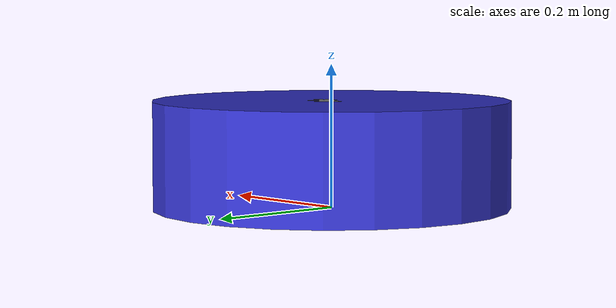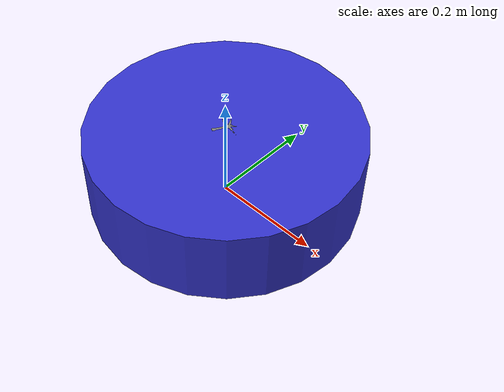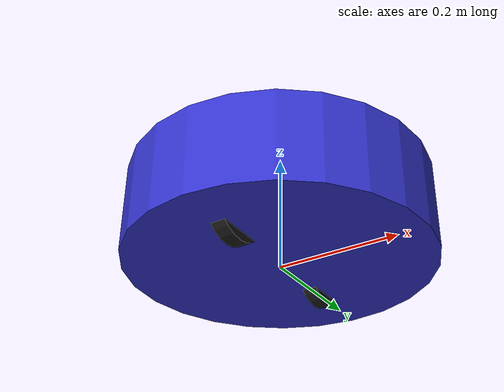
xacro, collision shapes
<?xml version="1.0"?>
<robot name="acrome_mini_robot" xmlns:xacro="http://www.ros.org/wiki/xacro">

  <!-- Parametreler -->
  <xacro:property name="lidar_radius" value="0.03"/>
  <xacro:property name="lidar_height" value="0.04"/>
  <xacro:property name="lidar_mass" value="0.2"/>
  <xacro:property name="PI" value="3.141592653589793"/>

  <!-- Ana robot gövdesi -->
  <link name="base_link">
    <visual>
      <geometry>
        <mesh filename="file:///home/halit/acrome_ws/src/acrome_mini_robot/meshes/base_link.stl" scale="1 1 1"/>
      </geometry>
      <origin xyz="0 0 0.075" rpy="0 0 -1.5708"/>
      <material name="blue">
        <color rgba="0.2 0.2 0.8 1"/>
      </material>
    </visual>
    <collision>
      <geometry>
        <cylinder radius="0.25" length="0.15"/>
      </geometry>
      <origin xyz="0 0 0.075" rpy="0 0 -1.5708"/>
    </collision>
    <inertial>
      <mass value="5.0"/>
      <origin xyz="0 0 0.075" rpy="0 0 0"/>
      <inertia ixx="0.2083" ixy="0.0" ixz="0.0" iyy="0.2083" iyz="0.0" izz="0.3125"/>
    </inertial>
  </link>

  <!-- Lidar -->
  <link name="lidar_link">
    <visual>
      <geometry>
        <cylinder radius="${lidar_radius}" length="${lidar_height}"/>
      </geometry>
      <origin xyz="0 0 0" rpy="0 0 0"/>
      <material name="gray"><color rgba="0.5 0.5 0.5 1"/></material>
    </visual>
    <collision>
      <geometry>
        <cylinder radius="${lidar_radius}" length="${lidar_height}"/>
      </geometry>
      <origin xyz="0 0 0" rpy="0 0 0"/>
    </collision>
    <inertial>
      <mass value="${lidar_mass}"/>
      <origin xyz="0 0 0" rpy="0 0 0"/>
      <inertia ixx="0.0001" ixy="0" ixz="0" iyy="0.0001" iyz="0" izz="0.0001"/>
    </inertial>
  </link>

  <!-- Caster Wheel Support (Destek Çubuğu) -->
  <link name="caster_support">
    <visual>
      <geometry>
        <cylinder radius="0.005" length="0.03"/>
      </geometry>
      <origin xyz="0 0 -0.015" rpy="0 0 0"/>
      <material name="gray">
        <color rgba="0.5 0.5 0.5 1"/>
      </material>
    </visual>
    <collision>
      <geometry>
        <cylinder radius="0.005" length="0.03"/>
      </geometry>
      <origin xyz="0 0 -0.015" rpy="0 0 0"/>
    </collision>
    <inertial>
      <mass value="0.05"/>
      <origin xyz="0 0 -0.015" rpy="0 0 0"/>
      <inertia ixx="0.00001" ixy="0" ixz="0" iyy="0.00001" iyz="0" izz="0.00001"/>
    </inertial>
  </link>

  <!-- Caster Wheel -->
  <link name="caster_wheel">
    <visual>
      <geometry>
        <sphere radius="0.02"/>
      </geometry>
      <origin xyz="0 0 0" rpy="0 0 0"/>
      <material name="black">
        <color rgba="0.1 0.1 0.1 1"/>
      </material>
    </visual>
    <collision>
      <geometry>
        <sphere radius="0.02"/>
      </geometry>
      <origin xyz="0 0 0" rpy="0 0 0"/>
    </collision>
    <inertial>
      <mass value="0.1"/>
      <origin xyz="0 0 0" rpy="0 0 0"/>
      <inertia ixx="0.000016" ixy="0" ixz="0" iyy="0.000016" iyz="0" izz="0.000016"/>
    </inertial>
  </link>

  <!-- Tekerlek 2 -->
  <link name="wheel_2">
    <visual>
      <geometry>
        <mesh filename="file:///home/halit/acrome_ws/src/acrome_mini_robot/meshes/left_wheel.stl" scale="0.7 0.7 0.7"/>
      </geometry>
      <origin xyz="0 0 0" rpy="1.5708 0 0"/>
      <material name="black">
        <color rgba="0.1 0.1 0.1 1"/>
      </material>
    </visual>
    <collision>
      <geometry>
        <cylinder radius="0.06" length="0.025"/>
      </geometry>
      <origin xyz="0 0 0" rpy="1.5708 0 0"/>
    </collision>
    <inertial>
      <mass value="0.25"/>
      <origin xyz="0 0 0" rpy="0 0 0"/>
      <inertia ixx="0.00045" ixy="0.0" ixz="0.0" iyy="0.00045" iyz="0.0" izz="0.00045"/>
    </inertial>
  </link>

  <!-- Tekerlek 3 - Düzeltilmiş -->
  <link name="wheel_3">
    <visual>
      <geometry>
        <mesh filename="file:///home/halit/acrome_ws/src/acrome_mini_robot/meshes/right_wheel.stl" scale="0.7 0.7 0.7"/>
      </geometry>
      <origin xyz="0 0 0" rpy="1.5708 0 0"/>
      <material name="black">
        <color rgba="0.1 0.1 0.1 1"/>
      </material>
    </visual>
    <collision>
      <geometry>
        <cylinder radius="0.06" length="0.025"/>
      </geometry>
      <origin xyz="0 0 0" rpy="1.5708 0 0"/>
    </collision>
    <inertial>
      <mass value="0.25"/>
      <origin xyz="0 0 0" rpy="0 0 0"/>
      <inertia ixx="0.00045" ixy="0.0" ixz="0.0" iyy="0.00045" iyz="0.0" izz="0.00045"/>
    </inertial>
  </link>

  <joint name="base_to_lidar" type="fixed">
    <parent link="base_link"/>
    <child link="lidar_link"/>
    <origin xyz="0 0.0065 0.13" rpy="0 0 0"/>
  </joint>

  <joint name="base_to_caster_support" type="fixed">
    <parent link="base_link"/>
    <child link="caster_support"/>
    <origin xyz="0.085 0 0.05" rpy="0 0 0"/>
  </joint>

  <joint name="caster_support_to_wheel" type="continuous">
    <parent link="caster_support"/>
    <child link="caster_wheel"/>
    <origin xyz="0 0 -0.03" rpy="0 0 0"/>
    <axis xyz="0 0 1"/>
    <dynamics damping="0.001" friction="0.001"/>
  </joint>

  <joint name="base_to_wheel_2" type="continuous">
    <parent link="base_link"/>
    <child link="wheel_2"/>
    <origin xyz="0 0.13 0.045" rpy="0 0 -1.5708"/>
    <axis xyz="1 0 0"/>
    <dynamics damping="0.1" friction="0.01"/>
  </joint>

  <joint name="base_to_wheel_3" type="continuous">
    <parent link="base_link"/>
    <child link="wheel_3"/>
    <origin xyz="0 -0.13 0.045" rpy="0 0 -1.5708"/>
    <axis xyz="1 0 0"/>
    <dynamics damping="0.1" friction="0.01"/>
  </joint>

  <!-- ROS2 Control -->
  <ros2_control name="GazeboSimSystem" type="system">
    <hardware>
      <plugin>gz_ros2_control/GazeboSimSystem</plugin>
    </hardware>
    <joint name="base_to_wheel_2">
      <command_interface name="velocity">
        <param name="min">-10</param>
        <param name="max">10</param>
      </command_interface>
      <state_interface name="position"/>
      <state_interface name="velocity"/>
      <state_interface name="effort"/>
    </joint>
    <joint name="base_to_wheel_3">
      <command_interface name="velocity">
        <param name="min">-10</param>
        <param name="max">10</param>
      </command_interface>
      <state_interface name="position"/>
      <state_interface name="velocity"/>
      <state_interface name="effort"/>
    </joint>
    <!-- Caster wheel state yayınlamak için dummy joint -->
    <joint name="caster_support_to_wheel">
      <state_interface name="position"/>
      <state_interface name="velocity"/>
      <state_interface name="effort"/>
    </joint>
  </ros2_control>

  <!-- Gazebo pluginleri -->
  <gazebo>
    <plugin filename="gz_ros2_control-system" name="gz_ros2_control::GazeboSimROS2ControlPlugin">
      <parameters>$(find acrome_mini_robot)/config/acrome_controller.yaml</parameters>
    </plugin>
  </gazebo>

  <!-- Ana gövde sürtünmesini düşür -->
  <gazebo reference="base_link">
    <mu1>0.1</mu1>
    <mu2>0.1</mu2>
    <material>Gazebo/Blue</material>
  </gazebo>

  <!-- Gazebo Caster Support Ayarları -->
  <gazebo reference="caster_support">
    <mu1>0.1</mu1>
    <mu2>0.1</mu2>
    <material>Gazebo/Grey</material>
  </gazebo>

  <!-- Gazebo Caster Wheel Ayarları -->
  <gazebo reference="caster_wheel">
    <!-- Düşük sürtünme - kolayca kayabilir -->
    <mu1>0.1</mu1>
    <mu2>0.1</mu2>
    <!-- Düşük sertlik değerleri -->
    <kp>2000.0</kp>
    <kd>5.0</kd>
    <minDepth>0.001</minDepth>
    <maxVel>1.0</maxVel>
    <material>Gazebo/Black</material>
  </gazebo>
<!-- Gazebo ayarları - Lidar sensor kısmı -->
  <gazebo reference="lidar_link">
    <material>Gazebo/Black</material>
    <sensor name="lidar_sensor" type="gpu_lidar">
      <pose>0 0 0 0 0 0</pose>
      <visualize>true</visualize>
      <update_rate>10</update_rate>
      <ray>
        <scan>
          <horizontal>
            <samples>360</samples>
            <resolution>1</resolution>
            <min_angle>-${PI}</min_angle>
            <max_angle>${PI}</max_angle>
          </horizontal>
          <vertical>
            <samples>1</samples>
            <resolution>1</resolution>
            <min_angle>0</min_angle>
            <max_angle>0</max_angle>
          </vertical>
        </scan>
        <range>
          <min>0.12</min>
          <max>12.0</max>
          <resolution>0.01</resolution>
        </range>
      </ray>
      <always_on>1</always_on>
      <topic>/scan</topic>
      <plugin filename="gz-sim-sensors-system" name="gz::sim::systems::Sensors">
        <ros>
          <namespace></namespace>
          <topic>scan</topic>
          <frame_id>lidar_link</frame_id>
        </ros>
      </plugin>
    </sensor>
  </gazebo>

  <gazebo reference="wheel_2">
    <mu1>1.5</mu1>
    <mu2>1.5</mu2>
    <kp>2000.0</kp>
    <kd>5.0</kd>
    <minDepth>0.001</minDepth>
    <maxVel>1.0</maxVel>
    <material>Gazebo/Black</material>
  </gazebo>

  <gazebo reference="wheel_3">
    <mu1>1.5</mu1>
    <mu2>1.5</mu2>
    <kp>2000.0</kp>
    <kd>5.0</kd>
    <minDepth>0.001</minDepth>
    <maxVel>1.0</maxVel>
    <material>Gazebo/Black</material>
  </gazebo>

  <surface>
    <friction>
      <ode>
        <mu>1.5</mu>
        <mu2>1.5</mu2>
        <fdir1>0 1 0</fdir1>
        <slip1>0.01</slip1>
        <slip2>0.01</slip2>
      </ode>
    </friction>
  </surface>

</robot>
